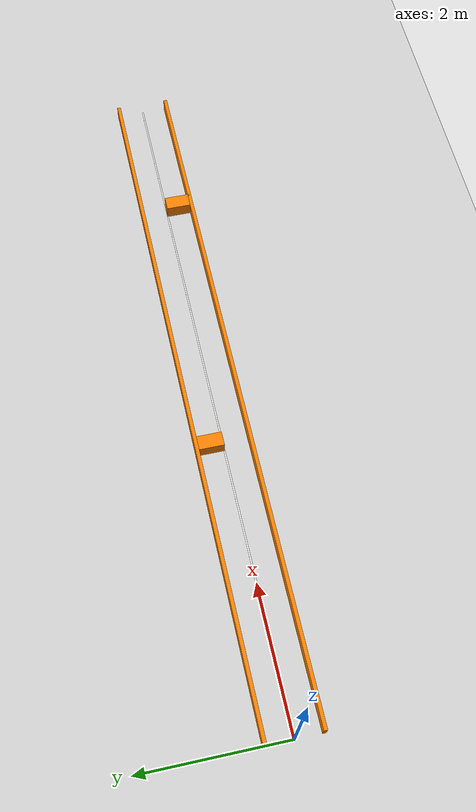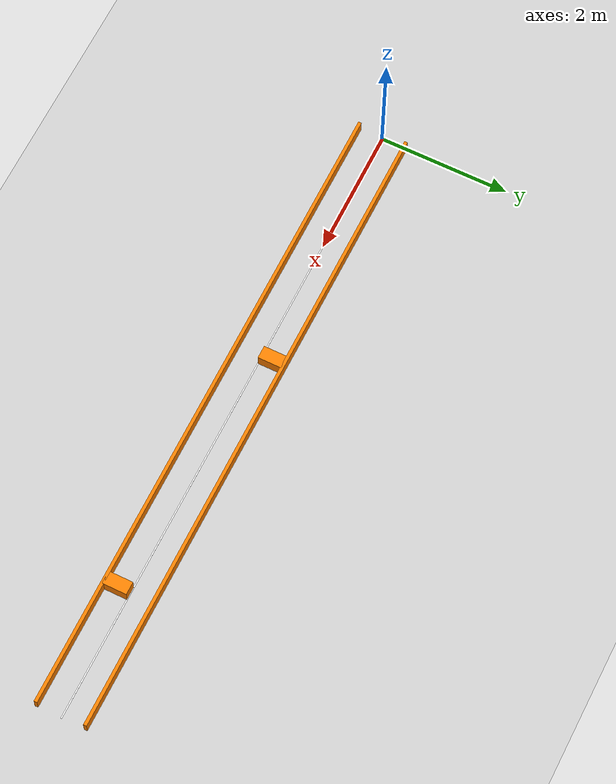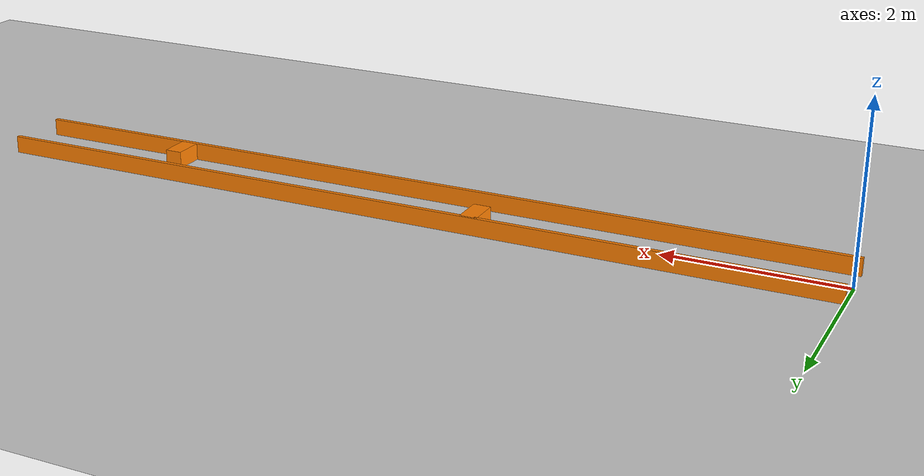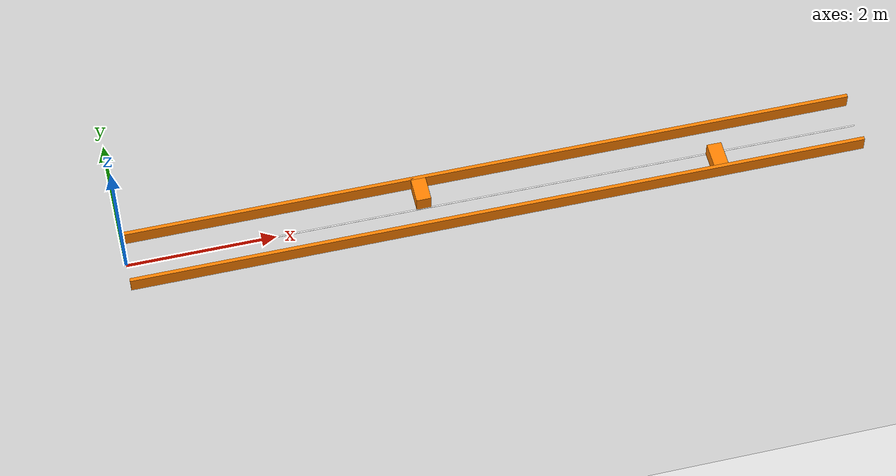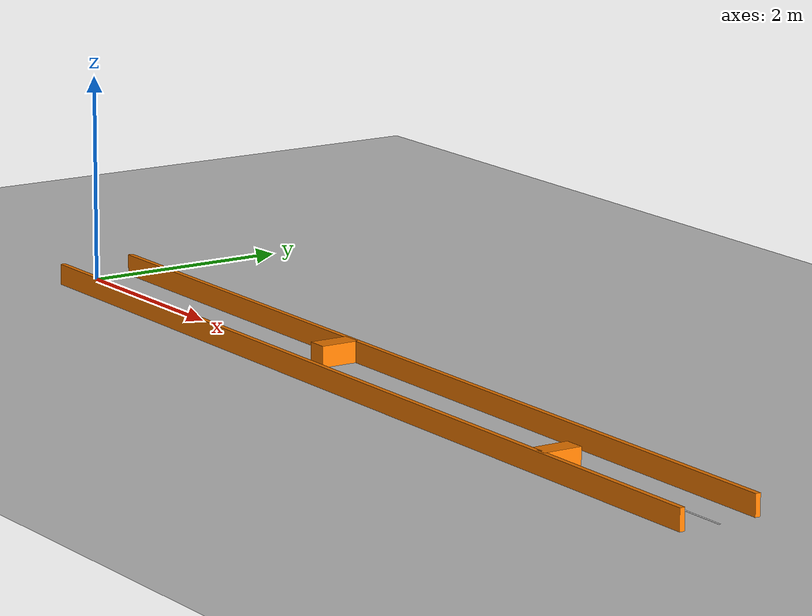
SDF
<?xml version="1.0" ?>
<sdf version="1.6">
  <world name="racing_track">

    <physics name="1ms" type="ignored">
      <max_step_size>0.001</max_step_size>
      <real_time_factor>1.0</real_time_factor>
    </physics>

    <plugin filename="gz-sim-physics-system" name="gz::sim::systems::Physics"/>
    <plugin filename="gz-sim-scene-broadcaster-system" name="gz::sim::systems::SceneBroadcaster"/>
    <plugin filename="gz-sim-user-commands-system" name="gz::sim::systems::UserCommands"/>

    <light name="sun" type="directional">
      <cast_shadows>true</cast_shadows>
      <pose>0 0 10 0 0 0</pose>
      <diffuse>0.8 0.8 0.8 1</diffuse>
      <specular>0.2 0.2 0.2 1</specular>
      <direction>-0.5 0.1 -0.9</direction>
    </light>

    <model name="ground_plane">
      <static>true</static>
      <link name="link">
        <collision name="collision">
          <geometry><plane><normal>0 0 1</normal><size>100 100</size></plane></geometry>
        </collision>
        <visual name="visual">
          <geometry><plane><normal>0 0 1</normal><size>100 100</size></plane></geometry>
          <material><ambient>0.8 0.8 0.8 1</ambient><diffuse>0.8 0.8 0.8 1</diffuse></material>
        </visual>
      </link>
    </model>

    <model name="wall_top">
      <static>true</static>
      <pose>5 0.375 0.1 0 0 0</pose>
      <link name="link">
        <collision name="collision">
          <geometry><box><size>10 0.05 0.2</size></box></geometry>
        </collision>
        <visual name="visual">
          <geometry><box><size>10 0.05 0.2</size></box></geometry>
          <material><ambient>1 0.5 0 1</ambient><diffuse>1 0.5 0 1</diffuse></material>
        </visual>
      </link>
    </model>

    <model name="wall_bottom">
      <static>true</static>
      <pose>5 -0.375 0.1 0 0 0</pose>
      <link name="link">
        <collision name="collision">
          <geometry><box><size>10 0.05 0.2</size></box></geometry>
        </collision>
        <visual name="visual">
          <geometry><box><size>10 0.05 0.2</size></box></geometry>
          <material><ambient>1 0.5 0 1</ambient><diffuse>1 0.5 0 1</diffuse></material>
        </visual>
      </link>
    </model>

    <model name="lane_divider">
      <static>true</static>
      <pose>5 0 0.001 0 0 0</pose>
      <link name="link">
        <visual name="visual">
          <geometry><box><size>10 0.02 0.001</size></box></geometry>
          <material><ambient>1 1 1 1</ambient><diffuse>1 1 1 1</diffuse></material>
        </visual>
      </link>
    </model>

    <model name="obstacle_1">
      <static>true</static>
      <pose>4 0.1875 0.1 0 0 0</pose>
      <link name="link">
        <collision name="collision">
          <geometry><box><size>0.2 0.375 0.2</size></box></geometry>
        </collision>
        <visual name="visual">
          <geometry><box><size>0.2 0.375 0.2</size></box></geometry>
          <material><ambient>1 0.5 0 1</ambient><diffuse>1 0.5 0 1</diffuse></material>
        </visual>
      </link>
    </model>

    <model name="obstacle_2">
      <static>true</static>
      <pose>8 -0.1875 0.1 0 0 0</pose>
      <link name="link">
        <collision name="collision">
          <geometry><box><size>0.2 0.375 0.2</size></box></geometry>
        </collision>
        <visual name="visual">
          <geometry><box><size>0.2 0.375 0.2</size></box></geometry>
          <material><ambient>1 0.5 0 1</ambient><diffuse>1 0.5 0 1</diffuse></material>
        </visual>
      </link>
    </model>

  </world>
</sdf>
